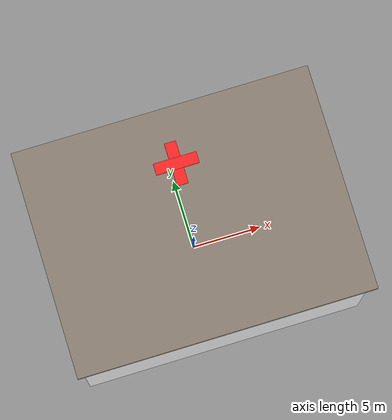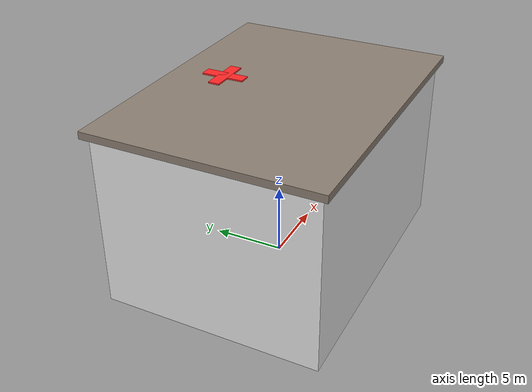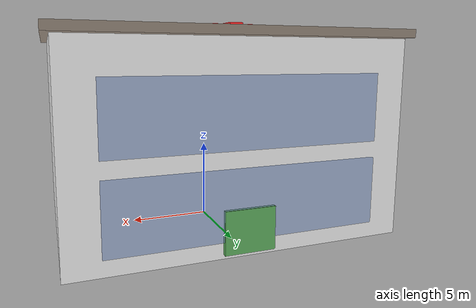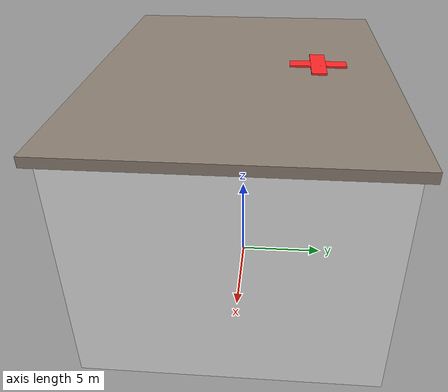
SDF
<?xml version="1.0"?>
<sdf version="1.9">
  <model name="hospital">
    <static>true</static>
    <link name="main">
      <collision name="col">
        <pose>0 0 6 0 0 0</pose>
        <geometry><box><size>20 15 12</size></box></geometry>
      </collision>
      <!-- Main building -->
      <visual name="walls">
        <pose>0 0 6 0 0 0</pose>
        <geometry><box><size>20 15 12</size></box></geometry>
        <material>
          <ambient>0.85 0.85 0.85 1</ambient>
          <diffuse>0.9 0.9 0.9 1</diffuse>
          <specular>0.1 0.1 0.1 1</specular>
        </material>
      </visual>
      <!-- Windows front row 1 -->
      <visual name="w_front_1">
        <pose>0 7.6 8 0 0 0</pose>
        <geometry><box><size>16 0.2 4</size></box></geometry>
        <material>
          <ambient>0.4 0.5 0.7 0.6</ambient>
          <diffuse>0.45 0.55 0.75 0.6</diffuse>
          <specular>0.3 0.3 0.3 1</specular>
        </material>
      </visual>
      <!-- Windows front row 2 -->
      <visual name="w_front_2">
        <pose>0 7.6 3 0 0 0</pose>
        <geometry><box><size>16 0.2 4</size></box></geometry>
        <material>
          <ambient>0.4 0.5 0.7 0.6</ambient>
          <diffuse>0.45 0.55 0.75 0.6</diffuse>
          <specular>0.3 0.3 0.3 1</specular>
        </material>
      </visual>
      <!-- Roof -->
      <visual name="roof">
        <pose>0 0 12.3 0 0 0</pose>
        <geometry><box><size>20.8 15.8 0.5</size></box></geometry>
        <material>
          <ambient>0.5 0.45 0.4 1</ambient>
          <diffuse>0.55 0.5 0.45 1</diffuse>
        </material>
      </visual>
      <!-- Red cross on roof -->
      <visual name="cross_h">
        <pose>0 4 12.8 0 0 0</pose>
        <geometry><box><size>3 0.8 0.1</size></box></geometry>
        <material>
          <ambient>0.9 0.1 0.1 1</ambient>
          <diffuse>1 0.15 0.15 1</diffuse>
          <emissive>0.3 0.05 0.05 1</emissive>
        </material>
      </visual>
      <visual name="cross_v">
        <pose>0 4 12.8 0 0 0</pose>
        <geometry><box><size>0.8 3 0.1</size></box></geometry>
        <material>
          <ambient>0.9 0.1 0.1 1</ambient>
          <diffuse>1 0.15 0.15 1</diffuse>
          <emissive>0.3 0.05 0.05 1</emissive>
        </material>
      </visual>
      <!-- Entrance -->
      <visual name="entrance">
        <pose>0 7.6 1.5 0 0 0</pose>
        <geometry><box><size>3 0.3 2.5</size></box></geometry>
        <material>
          <ambient>0.3 0.6 0.3 1</ambient>
          <diffuse>0.35 0.65 0.35 1</diffuse>
        </material>
      </visual>
    </link>
  </model>
</sdf>
